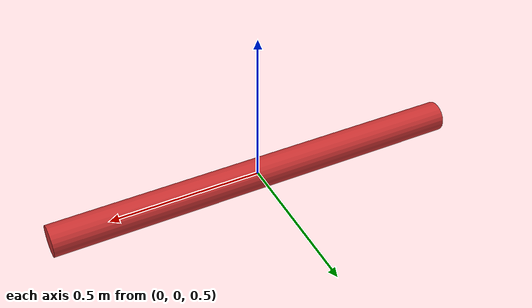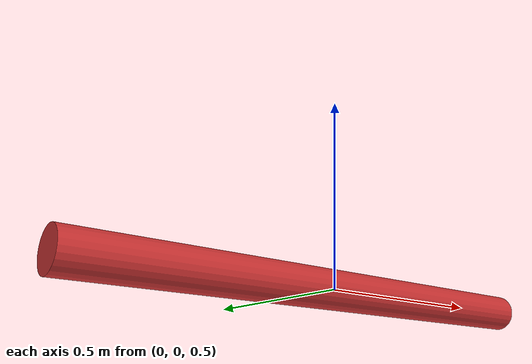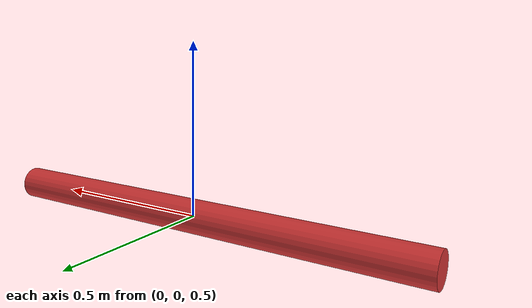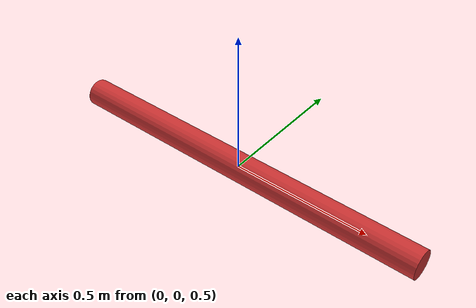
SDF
<?xml version="1.0" ?>
<sdf version="1.9">
  <model name="horizontal_cylinder">
    <static>true</static>
    <!-- Позиция и ориентация: X Y Z Roll Pitch Yaw -->
    <!-- Поворот на 90° вокруг оси Y (pitch) = 1.5708 радиан -->
    <pose>0 0 0.5 0 1.5708 0</pose>

    <link name="cylinder_link">
      <pose>0 0 0 0 0 0</pose>

      <!-- Визуальная часть цилиндра -->
      <visual name="visual">
        <geometry>
          <cylinder>
            <!-- РАДИУС цилиндра -->
            <radius>0.05</radius>
            <!-- ДЛИНА цилиндра (теперь будет горизонтальной осью) -->
            <length>1.3758261339135547</length>
          </cylinder>
        </geometry>
        <material>
          <ambient>0.8 0.2 0.2 1</ambient>
          <diffuse>0.8 0.2 0.2 1</diffuse>
          <specular>0.8 0.8 0.8 1</specular>
        </material>
      </visual>

      <!-- Коллизия цилиндра -->
      <collision name="collision">
        <geometry>
          <cylinder>
            <radius>0.05</radius>
            <length>1.3758261339135547</length>
          </cylinder>
        </geometry>
      </collision>

      <inertial>
        <mass>1.0</mass>
        <inertia>
          <ixx>0.1458</ixx>
          <ixy>0.0</ixy>
          <ixz>0.0</ixz>
          <iyy>0.1458</iyy>
          <iyz>0.0</iyz>
          <izz>0.125</izz>
        </inertia>
      </inertial>
    </link>
  </model>
</sdf>
